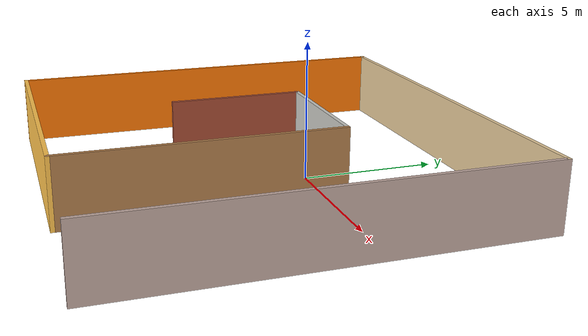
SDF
<?xml version='1.0'?>
<sdf version='1.6'>
  <model name='mybuilding'>
    <pose frame=''>-0.355 -1.735 0 0 -0 0</pose>
    <link name='Wall_0'>
      <collision name='Wall_0_Collision'>
        <geometry>
          <box>
            <size>5 0.15 2.5</size>
          </box>
        </geometry>
        <pose frame=''>0 0 1.25 0 -0 0</pose>
      </collision>
      <visual name='Wall_0_Visual'>
        <pose frame=''>0 0 1.25 0 -0 0</pose>
        <geometry>
          <box>
            <size>5 0.15 2.5</size>
          </box>
        </geometry>
        <material>
          <script>
            <uri>file://media/materials/scripts/gazebo.material</uri>
            <name>Gazebo/Bricks</name>
          </script>
          <ambient>1 1 1 1</ambient>
        </material>
        <meta>
          <layer>0</layer>
        </meta>
      </visual>
      <pose frame=''>-2.425 -0 0 0 -0 1.5708</pose>
    </link>
    <link name='Wall_1'>
      <collision name='Wall_1_Collision'>
        <geometry>
          <box>
            <size>5 0.15 2.5</size>
          </box>
        </geometry>
        <pose frame=''>0 0 1.25 0 -0 0</pose>
      </collision>
      <visual name='Wall_1_Visual'>
        <pose frame=''>0 0 1.25 0 -0 0</pose>
        <geometry>
          <box>
            <size>5 0.15 2.5</size>
          </box>
        </geometry>
        <material>
          <script>
            <uri>file://media/materials/scripts/gazebo.material</uri>
            <name>Gazebo/CeilingTiled</name>
          </script>
          <ambient>1 1 1 1</ambient>
        </material>
        <meta>
          <layer>0</layer>
        </meta>
      </visual>
      <pose frame=''>0 2.425 0 0 -0 0</pose>
    </link>
    <link name='Wall_2'>
      <collision name='Wall_2_Collision'>
        <geometry>
          <box>
            <size>10 0.15 2.5</size>
          </box>
        </geometry>
        <pose frame=''>0 0 1.25 0 -0 0</pose>
      </collision>
      <visual name='Wall_2_Visual'>
        <pose frame=''>0 0 1.25 0 -0 0</pose>
        <geometry>
          <box>
            <size>10 0.15 2.5</size>
          </box>
        </geometry>
        <material>
          <script>
            <uri>file://media/materials/scripts/gazebo.material</uri>
            <name>Gazebo/Wood</name>
          </script>
          <ambient>1 1 1 1</ambient>
        </material>
        <meta>
          <layer>0</layer>
        </meta>
      </visual>
      <pose frame=''>2.425 -2.5 0 0 -0 -1.5708</pose>
    </link>
    <link name='Wall_3'>
      <collision name='Wall_3_Collision'>
        <geometry>
          <box>
            <size>10 0.15 2.5</size>
          </box>
        </geometry>
        <pose frame=''>0 0 1.25 0 -0 0</pose>
      </collision>
      <visual name='Wall_3_Visual'>
        <pose frame=''>0 0 1.25 0 -0 0</pose>
        <geometry>
          <box>
            <size>10 0.15 2.5</size>
          </box>
        </geometry>
        <material>
          <script>
            <uri>file://media/materials/scripts/gazebo.material</uri>
            <name>Gazebo/Grey</name>
          </script>
          <ambient>1 0.764706 0.305882 1</ambient>
        </material>
        <meta>
          <layer>0</layer>
        </meta>
      </visual>
      <pose frame=''>-2.5 -7.425 0 0 -0 3.14159</pose>
    </link>
    <link name='Wall_4'>
      <collision name='Wall_4_Collision'>
        <geometry>
          <box>
            <size>15 0.15 2.5</size>
          </box>
        </geometry>
        <pose frame=''>0 0 1.25 0 -0 0</pose>
      </collision>
      <visual name='Wall_4_Visual'>
        <pose frame=''>0 0 1.25 0 -0 0</pose>
        <geometry>
          <box>
            <size>15 0.15 2.5</size>
          </box>
        </geometry>
        <material>
          <script>
            <uri>file://media/materials/scripts/gazebo.material</uri>
            <name>Gazebo/Grey</name>
          </script>
          <ambient>0.996078 0.47451 0.0196078 1</ambient>
        </material>
        <meta>
          <layer>0</layer>
        </meta>
      </visual>
      <pose frame=''>-7.425 -0 0 0 -0 1.5708</pose>
    </link>
    <link name='Wall_5'>
      <collision name='Wall_5_Collision'>
        <geometry>
          <box>
            <size>15 0.15 2.5</size>
          </box>
        </geometry>
        <pose frame=''>0 0 1.25 0 -0 0</pose>
      </collision>
      <visual name='Wall_5_Visual'>
        <pose frame=''>0 0 1.25 0 -0 0</pose>
        <geometry>
          <box>
            <size>15 0.15 2.5</size>
          </box>
        </geometry>
        <material>
          <script>
            <uri>file://media/materials/scripts/gazebo.material</uri>
            <name>Gazebo/Grey</name>
          </script>
          <ambient>0.921569 0.807843 0.615686 1</ambient>
        </material>
        <meta>
          <layer>0</layer>
        </meta>
      </visual>
      <pose frame=''>0 7.425 0 0 -0 0</pose>
    </link>
    <link name='Wall_6'>
      <collision name='Wall_6_Collision'>
        <geometry>
          <box>
            <size>15 0.15 2.5</size>
          </box>
        </geometry>
        <pose frame=''>0 0 1.25 0 -0 0</pose>
      </collision>
      <visual name='Wall_6_Visual'>
        <pose frame=''>0 0 1.25 0 -0 0</pose>
        <geometry>
          <box>
            <size>15 0.15 2.5</size>
          </box>
        </geometry>
        <material>
          <script>
            <uri>file://media/materials/scripts/gazebo.material</uri>
            <name>Gazebo/Grey</name>
          </script>
          <ambient>0.760784 0.662745 0.627451 1</ambient>
        </material>
        <meta>
          <layer>0</layer>
        </meta>
      </visual>
      <pose frame=''>7.425 -0 0 0 -0 -1.5708</pose>
    </link>
    <static>1</static>
  </model>
</sdf>
